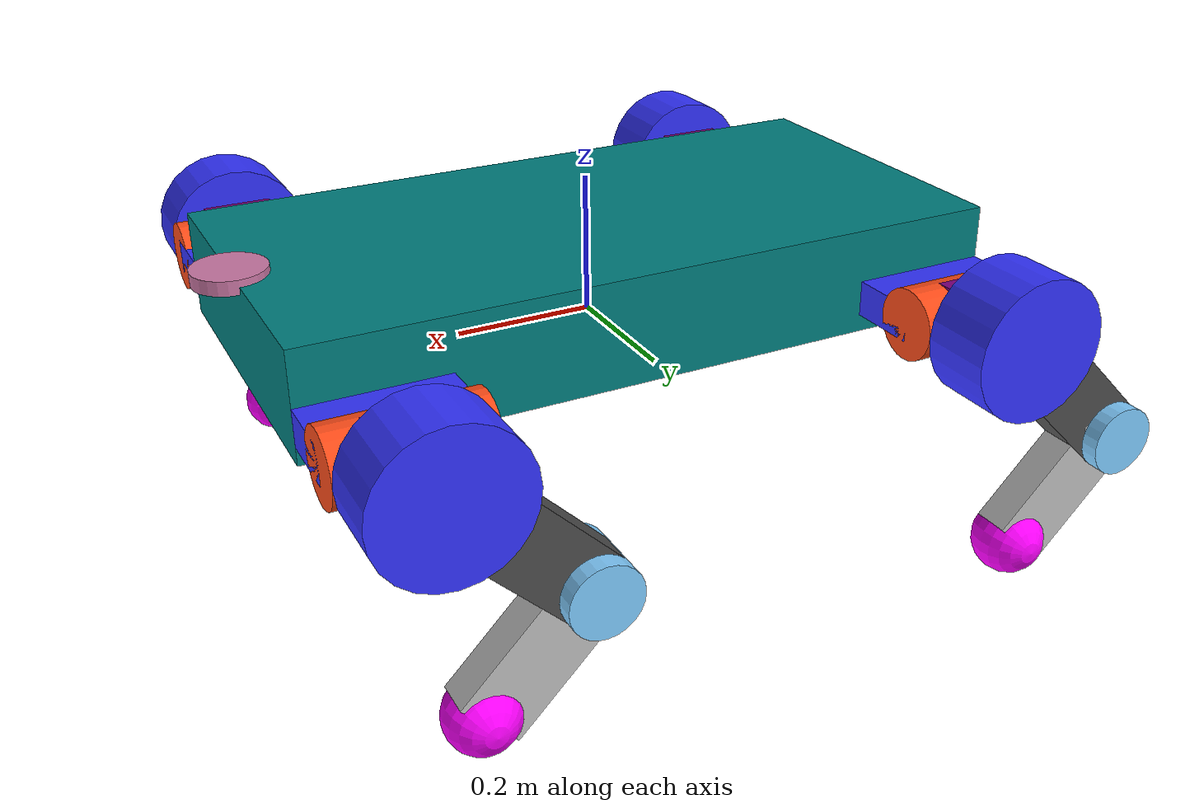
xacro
<?xml version="1.0"?>
<robot xmlns:xacro="http://www.ros.org/wiki/xacro"  name="robot">

    <xacro:include filename="robodog_urdf_parameters.xacro" />
    <xacro:include filename="robodog_inertials.xacro" />
    <xacro:include filename="robodog_p_link.xacro" />
    <xacro:include filename="robodog_r_link.xacro" />
    <xacro:include filename="robodog_s_link.xacro" />
    <xacro:include filename="robodog_base_link.xacro" />
    <xacro:include filename="robodog_left_leg_link.xacro" />
    <xacro:include filename="robodog_right_leg_link.xacro" />
    <xacro:include filename="robodog_lidar.xacro" />
    <xacro:include filename="robodog_gazebo_ros_control_plugins.xacro" />

!<!--                       Links                      -->

    <link name="base_inertial">
    <xacro:inertial_box mass="${base_mass}" x="${base_length}" y="${base_width}" z="${base_height}" origin="0 0 ${base_height/2}" />
    </link>

    <xacro:base_link name="base_link"/>
    <xacro:left_leg_link name="front_left_leg"/>
    <xacro:left_leg_link name="back_left_leg"/>
    <xacro:right_leg_link name="back_right_leg"/>
    <xacro:right_leg_link name="front_right_leg"/>
    <xacro:lidar_sensor name="front_lidar"  radius="0.05" length="0.02"/>

!<!--                           Joints                        -->

 !<!-- WORLD-BASE -->
    <joint name="base_joint" type="fixed">
        <origin xyz="0 0 0" rpy="0 0 0"/>
        <parent link="base_link"/>
        <child link="base_inertial"/>
    </joint>

 !<!--BASE-front_left_leg -->
    <joint name="base_P0_joint" type="fixed">
        <origin xyz="${(base_length/2.0)-(P0_length/2)} ${(base_width/2.0)+(P0_width/2)} ${P0_height/2}" rpy="0 0 0"/>
        <parent link="base_link"/>
        <child link="front_left_leg"/>
    </joint>

 !<!--BASE-back_left_leg -->
    <joint name="base_back_left_leg_joint" type="fixed">
        <origin xyz="${-(base_length/2.0)+(P0_length/2)} ${(base_width/2.0)+(P0_width/2)} ${P0_height/2}" rpy="0 0 0"/>
        <parent link="base_link"/>
        <child link="back_left_leg"/>
    </joint>

 !<!--BASE-front_right_leg -->
    <joint name="base_front_right_leg_joint" type="fixed">
        <origin xyz="${(base_length/2.0)-(P0_length/2)} ${-(base_width/2.0)-(P0_width/2)} ${P0_height/2}" rpy="0 0 0"/>
        <parent link="base_link"/>
        <child link="front_right_leg"/>
    </joint>

 !<!--BASE-back_right_leg -->
    <joint name="base_back_right_leg_joint" type="fixed">
        <origin xyz="${-(base_length/2.0)+(P0_length/2)} ${-(base_width/2.0)-(P0_width/2)} ${P0_height/2}" rpy="0 0 0"/>
        <parent link="base_link"/>
        <child link="back_right_leg"/>
    </joint>

 !<!--BASE-front_lidar -->
    <joint name="front_lidar_joint" type="fixed">
      <parent link="base_link"/>
      <child link="front_lidar_link"/>
      <origin xyz="${base_length/2} 0 ${base_height}" rpy=" 0 0 0"/>
    </joint>

</robot>

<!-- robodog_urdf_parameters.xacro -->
<robot xmlns:xacro="http://www.ros.org/wiki/xacro" >

    <!-- Maths-->
    <xacro:property name="sqrt_2" value="1.41421356237"/>

    <!-- Link Parameters-->

    <xacro:property name="base_length" value="1.0" />
    <xacro:property name="base_width" value="0.5" />
    <xacro:property name="base_height" value="0.15" />
    <xacro:property name="base_mass" value="0.1" />
    <xacro:property name="base_color" value="teal" />

    <xacro:property name="P0_length" value="0.2" />
    <xacro:property name="P0_width" value="0.1" />
    <xacro:property name="P0_height" value="0.05" />
    <xacro:property name="P0_mass" value="0.1" />
    <xacro:property name="P0_color" value="blue" />

    <xacro:property name="R0_length" value="0.2" />
    <xacro:property name="R0_radius" value="0.05" />
    <xacro:property name="R0_mass" value="0.1" />
    <xacro:property name="R0_color" value="orange" />
    <xacro:property name="R0_limit_effort" value="10.0" />
    <xacro:property name="R0_limit_lower" value="${-pi}" />
    <xacro:property name="R0_limit_upper" value="${pi}" />
    <xacro:property name="R0_limit_velocity" value="1.0" />
    <xacro:property name="R0_dynamics_damping" value="0.01" />
    <xacro:property name="R0_dynamics_friction" value="1000.0" />

    <xacro:property name="R1_length" value="0.1" />
    <xacro:property name="R1_radius" value="0.1" />
    <xacro:property name="R1_mass" value="0.1" />
    <xacro:property name="R1_color" value="blue" />
    <xacro:property name="R1_limit_effort" value="10.0" />
    <xacro:property name="R1_limit_lower" value="${-pi}" />
    <xacro:property name="R1_limit_upper" value="${pi}" />
    <xacro:property name="R1_limit_velocity" value="1.0" />
    <xacro:property name="R1_dynamics_damping" value="0.01" />
    <xacro:property name="R1_dynamics_friction" value="1000.0" />

    <xacro:property name="R2_length" value="0.1" />
    <xacro:property name="R2_radius" value="0.05" />
    <xacro:property name="R2_mass" value="0.1" />
    <xacro:property name="R2_color" value="sky_blue" />
    <xacro:property name="R2_limit_effort" value="10.0" />
    <xacro:property name="R2_limit_lower" value="${-pi}" />
    <xacro:property name="R2_limit_upper" value="${pi}" />
    <xacro:property name="R2_limit_velocity" value="1.0" />
    <xacro:property name="R2_dynamics_damping" value="0.01" />
    <xacro:property name="R2_dynamics_friction" value="1000.0" />

    <xacro:property name="P1_length" value="0.1" />
    <xacro:property name="P1_width" value="${R0_radius+(R1_length/2)}" />
    <xacro:property name="P1_height" value="0.1" />
    <xacro:property name="P1_mass" value="0.1" />
    <xacro:property name="P1_color" value="purple" />

    <xacro:property name="P2_length" value="${R1_radius+R2_radius+0.1}" />
    <xacro:property name="P2_width" value="0.1" />
    <xacro:property name="P2_height" value="0.05" />
    <xacro:property name="P2_mass" value="0.1" />
    <xacro:property name="P2_color" value="dark_gray" />

    <xacro:property name="P3_length" value="0.2" />
    <xacro:property name="P3_width" value="0.1" />
    <xacro:property name="P3_height" value="0.05" />
    <xacro:property name="P3_mass" value="0.1" />
    <xacro:property name="P3_color" value="silver" />

    <xacro:property name="S0_radius" value="0.05" />
    <xacro:property name="S0_mass" value="0.01" />
    <xacro:property name="S0_color" value="magenta" />

    <!-- GAZEBO-->
    <material name="white">
        <color rgba="1 1 1 1"/>
    </material>

    <material name="orange">
        <color rgba="1 0.3 0.1 1"/>
    </material>

    <material name="blue">
        <color rgba="0.2 0.2 1 1"/>
    </material>

    <material name="red">
        <color rgba="1 0 0 1"/>
    </material>

    <material name="green">
        <color rgba="0 1 0 1"/>
    </material>

    <material name="yellow">
        <color rgba="1 1 0 1"/>
    </material>

    <material name="cyan">
        <color rgba="0 1 1 1"/>
    </material>

    <material name="magenta">
        <color rgba="1 0 1 1"/>
    </material>

    <material name="purple">
        <color rgba="0.5 0 0.5 1"/>
    </material>

    <material name="teal">
        <color rgba="0 0.5 0.5 1"/>
    </material>

    <material name="gold">
        <color rgba="1 0.84 0 1"/>
    </material>

    <material name="silver">
        <color rgba="0.75 0.75 0.75 1"/>
    </material>

    <material name="dark_gray">
        <color rgba="0.3 0.3 0.3 1"/>
    </material>

    <material name="pink">
        <color rgba="1 0.4 0.7 1"/>
    </material>

    <material name="lime">
        <color rgba="0.7 1 0 1"/>
    </material>

    <material name="sky_blue">
        <color rgba="0.5 0.8 1 1"/>
    </material>

</robot>

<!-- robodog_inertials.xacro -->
<robot xmlns:xacro="http://www.ros.org/wiki/xacro" >

    <xacro:macro name="inertial_sphere" params="mass radius *origin">
        <inertial>
            <xacro:insert_block name="origin"/>
            <mass value="${mass}" />
            <inertia ixx="${(2/5) * mass * (radius*radius)}" ixy="0.0" ixz="0.0"
                    iyy="${(2/5) * mass * (radius*radius)}" iyz="0.0"
                    izz="${(2/5) * mass * (radius*radius)}" />
        </inertial>
    </xacro:macro>

    <xacro:macro name="inertial_box" params="mass x y z origin">
        <inertial>
            <origin xyz="${origin}" rpy="0 0 0"/>
            <mass value="${mass}" />
            <inertia ixx="${(1.0/12.0) * mass * (y*y+z*z)}" ixy="0.0" ixz="0.0"
                    iyy="${(1.0/12.0) * mass * (x*x+z*z)}" iyz="0.0"
                    izz="${(1.0/12.0) * mass * (x*x+y*y)}" />
        </inertial>
    </xacro:macro>

    <xacro:macro name="inertial_cylinder" params="mass length radius *origin">
        <inertial>
            <xacro:insert_block name="origin"/>
            <mass value="${mass}" />
            <inertia ixx="${(1/12) * mass * (3*radius*radius + length*length)}" ixy="0.0" ixz="0.0"
                    iyy="${(1/12) * mass * (3*radius*radius + length*length)}" iyz="0.0"
                    izz="${(1/2) * mass * (radius*radius)}" />
        </inertial>
    </xacro:macro>

</robot>

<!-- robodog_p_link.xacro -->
<robot xmlns:xacro="http://www.ros.org/wiki/xacro">

    <xacro:macro name="p_link" params="name length width height mass color">
        <link name="${name}">
            <visual>
                <origin xyz="0 0 ${height/2}" rpy="0 0 0"/>
                <geometry>
                    <box size="${length} ${width} ${height}" />
                </geometry>
                <material name="${color}"/>
            </visual>
            <collision>
                <origin xyz="0 0 ${height/2}" rpy="0 0 0"/>
                <geometry>
                    <box size="${length} ${width} ${height}" />
                </geometry>
            </collision>
            <xacro:inertial_box mass="${mass}" x="${length}" y="${width}" z="${height}" origin="0 0 ${height/2}" />
        </link>
    </xacro:macro>

</robot>

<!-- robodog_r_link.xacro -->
<robot xmlns:xacro="http://www.ros.org/wiki/xacro">

    <xacro:macro name="r_link" params="name length radius mass color">
        <link name="${name}">
            <visual>
                <origin xyz="0 0 ${length/2}" rpy="0 0 0"/>
                <geometry>
                    <cylinder length="${length}" radius="${radius}" />
                </geometry>
                <material name="${color}"/>
            </visual>
            <collision>
                <origin xyz="0 0 ${length/2}" rpy="0 0 0"/>
                <geometry>
                    <cylinder length="${length}" radius="${radius}" />
                </geometry>
            </collision>
            <xacro:inertial_cylinder mass="${mass}" length="${length}" radius="${radius}">
                <origin xyz="0 0 ${length/2}" rpy="0 0 0"/>
            </xacro:inertial_cylinder>
        </link>
    </xacro:macro>

</robot>

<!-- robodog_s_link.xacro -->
<robot xmlns:xacro="http://www.ros.org/wiki/xacro">

    <xacro:macro name="s_link" params="name radius mass color">
    <!--  silindir olarak degistir-->
        <link name="${name}">
            <visual>
                <origin xyz="0 0 0" rpy="0 0 0"/>
                <geometry>
                    <sphere radius="${radius}"/>
                </geometry>
                <material name="${color}"/>
            </visual>
            <collision>
                <origin xyz="0 0 0" rpy="0 0 0"/>
                <geometry>
                    <sphere radius="${radius}"/>
                </geometry>
                <surface>
                    <friction>
                        <ode>
                            <mu>100.0</mu> <!-- Static -->
                            <mu2>100.0</mu2> <!-- Kinematic -->
                        </ode>
                    </friction>
                </surface>
            </collision>
            <xacro:inertial_sphere mass="${mass}" radius="${radius}">
                <origin xyz="0 0 0" rpy="0 0 0"/>
            </xacro:inertial_sphere>
        </link>

    </xacro:macro>
</robot>

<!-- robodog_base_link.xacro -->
<robot xmlns:xacro="http://www.ros.org/wiki/xacro" >

    <xacro:macro name="base_link" params="name">
        <link name="${name}">
            <visual>
                <origin xyz="0 0 ${base_height/2}" rpy="0 0 0"/>
                <geometry>
                    <box size="${base_length} ${base_width} ${base_height}" />
                </geometry>
                <material name="${base_color}"/>
            </visual>
            <colusion>
                <origin xyz="0 0 ${base_height/2}" rpy="0 0 0"/>
                <geometry>
                    <box size="${base_length} ${base_width} ${base_height}" />
                </geometry>
            </colusion>
        </link>
    </xacro:macro>

</robot>

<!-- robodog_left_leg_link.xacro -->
<robot xmlns:xacro="http://www.ros.org/wiki/xacro">

    <xacro:macro name="left_leg_link" params="name ">

        !<!-- leg  -->
        <link name="${name}"></link>
        <xacro:p_link name="${name}_P0_link" length="${P0_length}" width="${P0_width}" height="${P0_height}" mass="${P0_mass}" color="${P0_color}"/>
        <xacro:r_link name="${name}_R0_link" length="${R0_length}" radius="${R0_radius}" mass="${R0_mass}" color="${R0_color}"/>
        <xacro:p_link name="${name}_P1_link" length="${P1_length}" width="${P1_width}" height="${P1_height}" mass="${P1_mass}" color="${P1_color}"/>
        <xacro:r_link name="${name}_R1_link" length="${R1_length}" radius="${R1_radius}" mass="${R1_mass}" color="${R1_color}"/>
        <xacro:p_link name="${name}_P2_link" length="${P2_length}" width="${P2_width}" height="${P2_height}" mass="${P2_mass}" color="${P2_color}"/>
        <xacro:r_link name="${name}_R2_link" length="${R2_length}" radius="${R2_radius}" mass="${R2_mass}" color="${R2_color}"/>
        <xacro:p_link name="${name}_P3_link" length="${P3_length}" width="${P3_width}" height="${P3_height}" mass="${P3_mass}" color="${P3_color}"/>
        <xacro:s_link name="${name}_S0_link" radius="${S0_radius}" mass="${S0_mass}" color="${S0_color}"/>

        <!-- leg-P0 -->
        <joint name="${name}_P0_joint" type="fixed">
            <origin xyz="0 0 0" rpy="0 0 ${pi}"/>
            <parent link="${name}"/>
            <child link="${name}_P0_link"/>
        </joint>

        <joint name="${name}_P0_R0_joint" type="revolute">
            <origin xyz="${-(P0_length/2)}  ${-(P0_width/2)} ${(P0_height/2)} " rpy="0 ${pi/2} 0"/>
            <parent link="${name}_P0_link"/>
            <child link="${name}_R0_link"/>
            <axis xyz="0 0 1"/>
            <limit effort="${R0_limit_effort}" lower="${R0_limit_lower}" upper="${R0_limit_upper}" velocity="${R0_limit_velocity}"/>
            <dynamics damping="${R0_dynamics_damping}" friction="${R0_dynamics_friction}"/>
        </joint>

        <joint name="${name}_R0_P1_joint" type="fixed">
            <origin xyz="0 ${-(R0_radius+(R1_length/2))/2} ${P1_length/2}" rpy="0 0 0"/>
            <parent link="${name}_R0_link"/>
            <child link="${name}_P1_link"/>
        </joint>

        <joint name="${name}_P1_R1_joint" type="revolute">
            <origin xyz="0 ${-(R0_radius)+(P1_width/2)} ${P1_length/2}" rpy="${pi/2} 0 0"/>
            <parent link="${name}_P1_link"/>
            <child link="${name}_R1_link"/>
            <axis xyz="0 0 1"/>
            <limit effort="${R1_limit_effort}" lower="${R1_limit_lower}" upper="${R1_limit_upper}" velocity="${R1_limit_velocity}"/>
            <dynamics damping="${R1_dynamics_damping}" friction="${R1_dynamics_friction}"/>
        </joint>

        <joint name="${name}_R1_P2_joint" type="fixed">
            <origin xyz="${(P2_length/2)/sqrt_2} ${(P2_length/2)/sqrt_2} ${P2_height/2}" rpy="0 0 ${pi/4}"/>
            <parent link="${name}_R1_link"/>
            <child link="${name}_P2_link"/>
        </joint>

        <joint name="${name}_P2_R2_joint" type="revolute">
            <origin xyz="${(P2_length/2)} 0 ${-P2_height/2}" rpy="0 0 ${pi}"/>
            <parent link="${name}_P2_link"/>
            <child link="${name}_R2_link"/>
            <axis xyz="0 0 1"/>
            <limit effort="${R2_limit_effort}" lower="${R2_limit_lower}" upper="${R2_limit_upper}" velocity="${R2_limit_velocity}"/>
            <dynamics damping="${R2_dynamics_damping}" friction="${R2_dynamics_friction}"/>
        </joint>

        <joint name="${name}_R2_P3_joint" type="fixed">
            <origin xyz="0 ${P3_length/2} ${P3_height/2}" rpy="0 0 ${pi/2}"/>
            <parent link="${name}_R2_link"/>
            <child link="${name}_P3_link"/>
        </joint>

        <joint name="${name}_P3_S0_joint" type="fixed">
            <origin xyz="${P3_length/2} 0 ${P3_height/2}" rpy="0 0 0"/>
            <parent link="${name}_P3_link"/>
            <child link="${name}_S0_link"/>
        </joint>

    </xacro:macro>
</robot>

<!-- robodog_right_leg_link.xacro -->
<robot xmlns:xacro="http://www.ros.org/wiki/xacro">

    <xacro:macro name="right_leg_link" params="name ">

        !<!-- leg  -->
        <link name="${name}"></link>
        <xacro:p_link name="${name}_P0_link" length="${P0_length}" width="${P0_width}" height="${P0_height}" mass="${P0_mass}" color="${P0_color}"/>
        <xacro:r_link name="${name}_R0_link" length="${R0_length}" radius="${R0_radius}" mass="${R0_mass}" color="${R0_color}"/>
        <xacro:p_link name="${name}_P1_link" length="${P1_length}" width="${P1_width}" height="${P1_height}" mass="${P1_mass}" color="${P1_color}"/>
        <xacro:r_link name="${name}_R1_link" length="${R1_length}" radius="${R1_radius}" mass="${R1_mass}" color="${R1_color}"/>
        <xacro:p_link name="${name}_P2_link" length="${P2_length}" width="${P2_width}" height="${P2_height}" mass="${P2_mass}" color="${P2_color}"/>
        <xacro:r_link name="${name}_R2_link" length="${R2_length}" radius="${R2_radius}" mass="${R2_mass}" color="${R2_color}"/>
        <xacro:p_link name="${name}_P3_link" length="${P3_length}" width="${P3_width}" height="${P3_height}" mass="${P3_mass}" color="${P3_color}"/>
        <xacro:s_link name="${name}_S0_link" radius="${S0_radius}" mass="${S0_mass}" color="${S0_color}"/>

        <!-- leg-P0 -->
        <joint name="${name}_P0_joint" type="fixed">
            <origin xyz="0 0 0" rpy="0 0 0"/>
            <parent link="${name}"/>
            <child link="${name}_P0_link"/>
        </joint>

        <joint name="${name}_P0_R0_joint" type="revolute">
            <origin xyz="${-(P0_length/2)}  ${-(P0_width/2)} ${(P0_height/2)} " rpy="0 ${pi/2} 0"/>
            <parent link="${name}_P0_link"/>
            <child link="${name}_R0_link"/>
            <axis xyz="0 0 1"/>
            <limit effort="${R0_limit_effort}" lower="${R0_limit_lower}" upper="${R0_limit_upper}" velocity="${R0_limit_velocity}"/>
            <dynamics damping="${R0_dynamics_damping}" friction="${R0_dynamics_friction}"/>
        </joint>

        <joint name="${name}_R0_P1_joint" type="fixed">
            <origin xyz="0 ${-(R0_radius+(R1_length/2))/2} ${P1_length/2}" rpy="0 0 0"/>
            <parent link="${name}_R0_link"/>
            <child link="${name}_P1_link"/>
        </joint>

        <joint name="${name}_P1_R1_joint" type="revolute">
            <origin xyz="0 ${-(R0_radius)+(P1_width/2)} ${P1_length/2}" rpy="${pi/2} 0 0"/>
            <parent link="${name}_P1_link"/>
            <child link="${name}_R1_link"/>
            <axis xyz="0 0 1"/>
            <limit effort="${R1_limit_effort}" lower="${R1_limit_lower}" upper="${R1_limit_upper}" velocity="${R1_limit_velocity}"/>
            <dynamics damping="${R1_dynamics_damping}" friction="${R1_dynamics_friction}"/>
        </joint>

        <joint name="${name}_R1_P2_joint" type="fixed">
            <origin xyz="${(P2_length/2)/sqrt_2} ${-(P2_length/2)/sqrt_2} ${P2_height/2}" rpy="0 0 ${-pi/4}"/>
            <parent link="${name}_R1_link"/>
            <child link="${name}_P2_link"/>
        </joint>

        <joint name="${name}_P2_R2_joint" type="revolute">
            <origin xyz="${(P2_length/2)} 0 ${-P2_height/2}" rpy="0 0 0"/>
            <parent link="${name}_P2_link"/>
            <child link="${name}_R2_link"/>
            <axis xyz="0 0 1"/>
            <limit effort="${R2_limit_effort}" lower="${R2_limit_lower}" upper="${R2_limit_upper}" velocity="${R2_limit_velocity}"/>
            <dynamics damping="${R2_dynamics_damping}" friction="${R2_dynamics_friction}"/>
        </joint>

        <joint name="${name}_R2_P3_joint" type="fixed">
            <origin xyz="0 ${P3_length/2} ${P3_height/2}" rpy="0 0 ${pi/2}"/>
            <parent link="${name}_R2_link"/>
            <child link="${name}_P3_link"/>
        </joint>

        <joint name="${name}_P3_S0_joint" type="fixed">
            <origin xyz="${P3_length/2} 0 ${P3_height/2}" rpy="0 0 0"/>
            <parent link="${name}_P3_link"/>
            <child link="${name}_S0_link"/>
        </joint>

    </xacro:macro>
</robot>

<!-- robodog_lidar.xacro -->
<robot xmlns:xacro="http://www.ros.org/wiki/xacro">

  <xacro:macro name="lidar_sensor" params="name radius length">

    <link name="${name}_link">
      <visual>
        <geometry>
          <cylinder radius="${radius}" length="${length}"/>
        </geometry>
      </visual>
    </link>

    <gazebo reference="${name}_link">
        <sensor name="lidar" type="ray">
          <pose>0 0 0 0 0 0</pose>
          <always_on>true</always_on>
          <visualize>false</visualize>
          <update_rate>5</update_rate>
          <ray>
            <scan>
              <horizontal>
                <samples>360</samples>
                <resolution>1.00000</resolution>
                <min_angle>0.000000</min_angle>
                <max_angle>6.280000</max_angle>
              </horizontal>
            </scan>
            <range>
              <min>0.120000</min>
              <max>3.5</max>
              <resolution>0.015000</resolution>
            </range>
            <noise>
              <type>gaussian</type>
              <mean>0.0</mean>
              <stddev>0.01</stddev>
            </noise>
          </ray>
          <plugin name="scan" filename="libgazebo_ros_ray_sensor.so">
            <ros>
              <remapping>~/out:=scan</remapping>
            </ros>
            <output_type>sensor_msgs/LaserScan</output_type>
            <frame_name>lidar_link</frame_name>
          </plugin>
      </sensor>

     </gazebo>

  </xacro:macro>

</robot>
